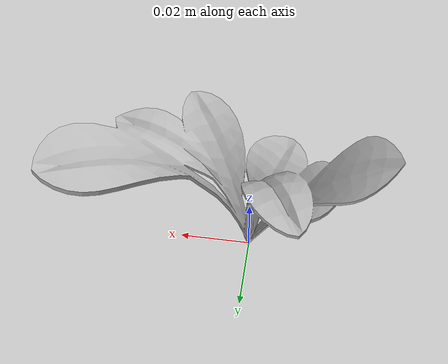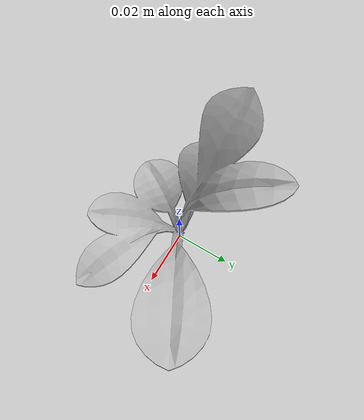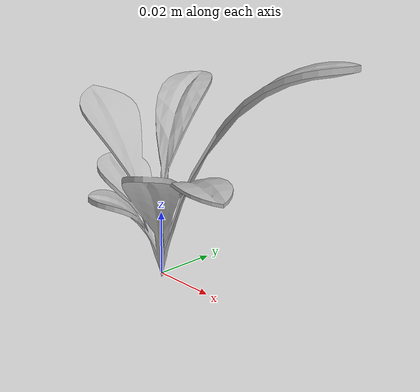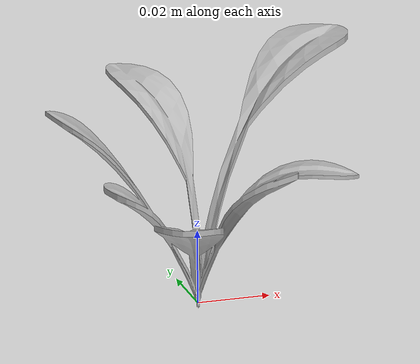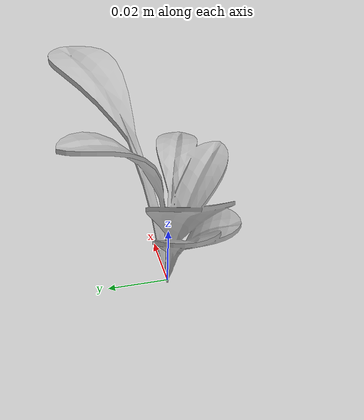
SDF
<sdf version="1.6">
  <model name="sugar_beet_17">
    <static>true</static>
    <link name="body">
      <visual name="visual">
        <geometry>
          <mesh>
            <uri>file:///sugar_beet_17/media/sugar_beet.dae</uri>
          </mesh>
        </geometry>
      </visual>
    </link>
  </model>
</sdf>
